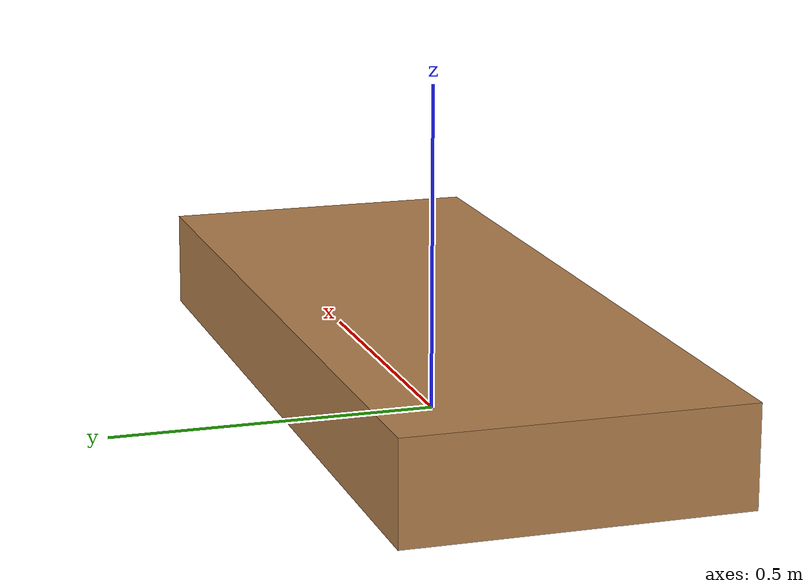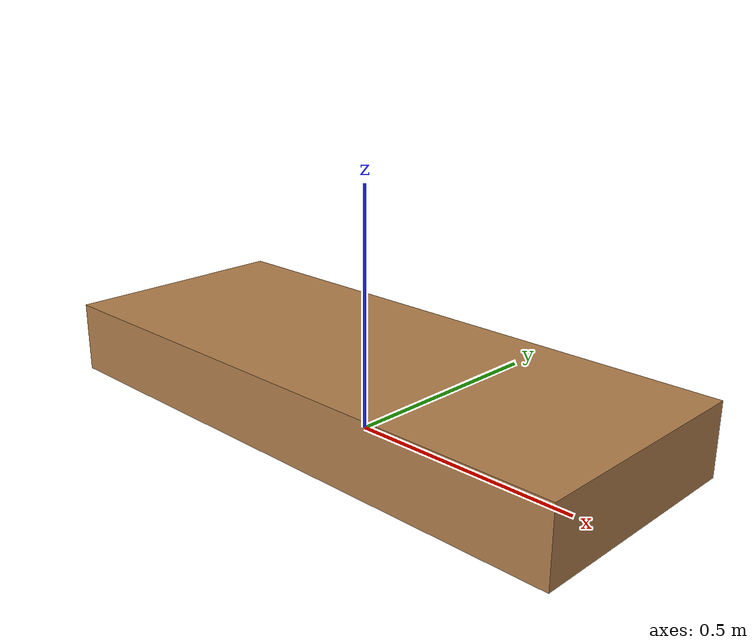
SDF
<?xml version='1.0'?>
<sdf version='1.7'>
  <model name='wood_plat_clone'>
    <link name='link'>
      <inertial>
        <mass>10</mass>
        <inertia>
          <ixx>0.227</ixx>
          <ixy>0</ixy>
          <ixz>0</ixz>
          <iyy>1.3208</iyy>
          <iyz>0</iyz>
          <izz>1.5104</izz>
        </inertia>
        <pose>0 0 0 0 -0 0</pose>
      </inertial>
      <self_collide>0</self_collide>
      <enable_wind>0</enable_wind>
      <kinematic>0</kinematic>
      <pose>0 -0 0.1 0 -0 0</pose>
      <gravity>1</gravity>
      <visual name='visual'>
        <geometry>
          <mesh>
            <uri>file://../config/meshes/WoodenPlatform1/WoodPlat1.dae</uri>
          </mesh>
        </geometry>
        <material>
          <script>
            <name>Gazebo/Wood</name>
            <uri>file://media/materials/scripts/gazebo.material</uri>
          </script>
          <shader type='pixel'>
            <normal_map>__default__</normal_map>
          </shader>
          <ambient>1 1 1 1</ambient>
          <diffuse>1 1 1 1</diffuse>
          <specular>0.2 0.2 0.2 1</specular>
          <emissive>0 0 0 1</emissive>
        </material>
        <pose>0 0 0 0 -0 0</pose>
        <transparency>0</transparency>
        <cast_shadows>1</cast_shadows>
      </visual>
      <collision name='collision'>
        <laser_retro>0</laser_retro>
        <max_contacts>100</max_contacts>
        <pose>0 0 0 0 -0 0</pose>
        <geometry>
          <mesh>
            <uri>/home/alessio/alessio_ws/src/world_generator/data/../config/meshes/WoodenPlatform1/WoodPlat1.dae</uri>
            <scale>1 1 1</scale>
          </mesh>
        </geometry>
        <surface>
          <friction>
            <ode>
              <mu>0.95</mu>
              <mu2>0.95</mu2>
              <fdir1>0.707 0.707 0</fdir1>
              <slip1>0</slip1>
              <slip2>0</slip2>
            </ode>
            <torsional>
              <coefficient>0.95</coefficient>
              <patch_radius>0.5</patch_radius>
              <surface_radius>0.5</surface_radius>
              <use_patch_radius>1</use_patch_radius>
              <ode>
                <slip>0</slip>
              </ode>
            </torsional>
          </friction>
          <bounce>
            <restitution_coefficient>0.002</restitution_coefficient>
            <threshold>1e+06</threshold>
          </bounce>
          <contact>
            <collide_without_contact>0</collide_without_contact>
            <collide_without_contact_bitmask>1</collide_without_contact_bitmask>
            <collide_bitmask>1</collide_bitmask>
            <ode>
              <soft_cfm>0</soft_cfm>
              <soft_erp>0.2</soft_erp>
              <kp>1e+15</kp>
              <kd>1e+13</kd>
              <max_vel>0.01</max_vel>
              <min_depth>0</min_depth>
            </ode>
            <bullet>
              <split_impulse>1</split_impulse>
              <split_impulse_penetration_threshold>-0.01</split_impulse_penetration_threshold>
              <soft_cfm>0</soft_cfm>
              <soft_erp>0.2</soft_erp>
              <kp>1e+15</kp>
              <kd>1e+13</kd>
            </bullet>
          </contact>
        </surface>
      </collision>
    </link>
    <static>0</static>
    <allow_auto_disable>1</allow_auto_disable>
  </model>
</sdf>
